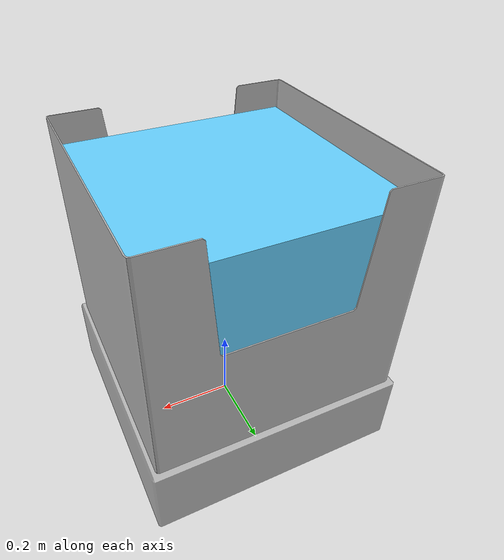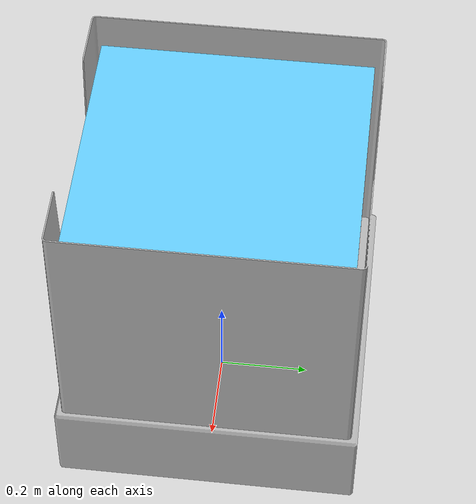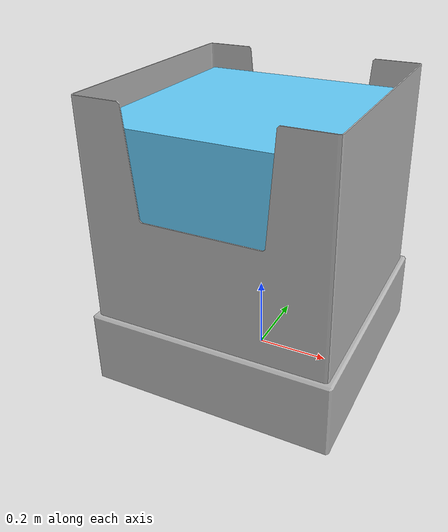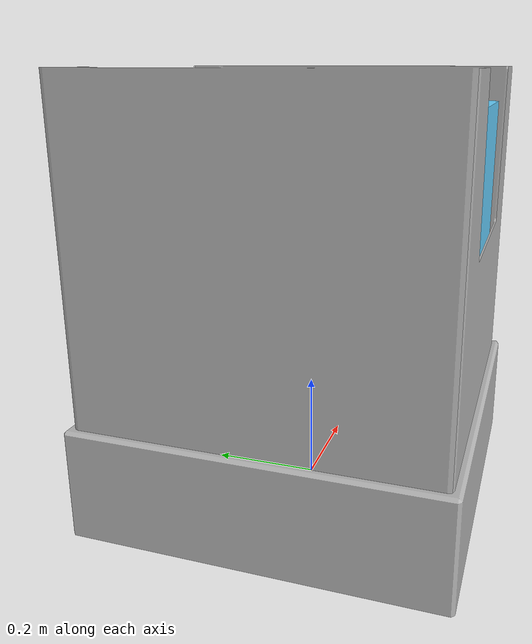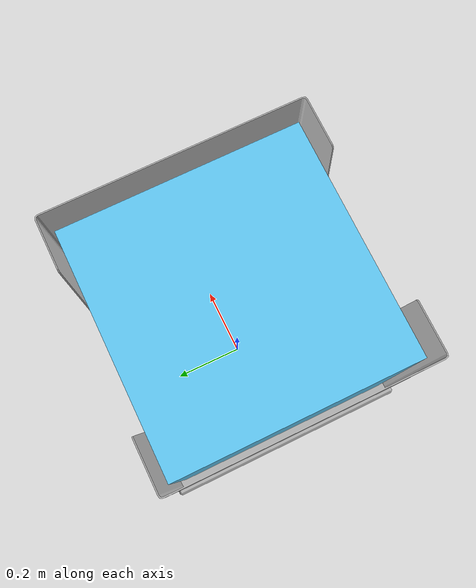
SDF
<?xml version="1.0" ?>
<sdf version="1.6">
  <model name="parts_bin">
    <static>true</static>
    <link name="link">
      <visual name="exterior_visual">
        <geometry>
          <mesh>
            <uri>model://parts_bin/meshes/bin_exterior.dae</uri>
          </mesh>
        </geometry>
      </visual>

      <visual name="interior_visual">
        <geometry>
          <mesh>
            <uri>model://parts_bin/meshes/bin_interior.stl</uri>
          </mesh>
        </geometry>
        <material>
          <ambient>0.4 0.82 1.0 1.0</ambient>
          <diffuse>0.4 0.82 1.0 1.0</diffuse>
        </material>
      </visual>

      <collision name="interior_collision">
        <geometry>
          <mesh>
            <uri>model://parts_bin/meshes/bin_interior.stl</uri>
          </mesh>
        </geometry>
      </collision>

      <collision name="exterior_collision">
        <geometry>
          <mesh>
            <uri>model://parts_bin/meshes/bin_exterior.stl</uri>
          </mesh>
        </geometry>
      </collision>

    </link>
  </model>
</sdf>
